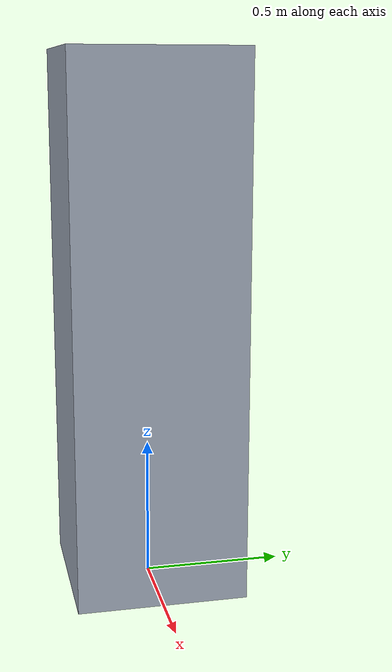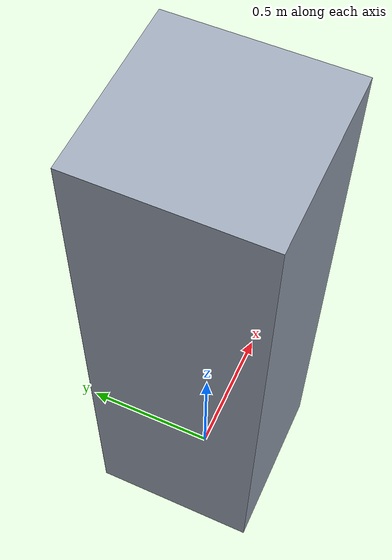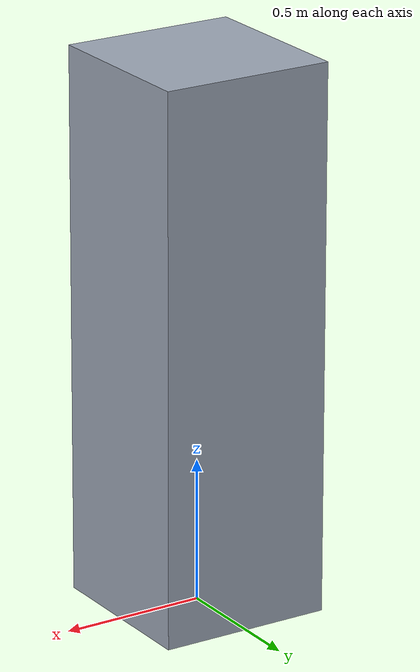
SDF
<?xml version="1.0"?>
<sdf version="1.9">
  <model name="cabinet_tall">
    <static>true</static>
    <link name="link">
      <collision name="collision_0">
        <pose>0 0 0.95 0 0 0</pose>
        <geometry><box><size>0.6 0.6 1.9</size></box></geometry>
      </collision>
      <visual name="visual_0">
        <pose>0 0 0.95 0 0 0</pose>
        <geometry><box><size>0.6 0.6 1.9</size></box></geometry>
        <material>
          <ambient>0.62 0.66 0.72 1</ambient>
          <diffuse>0.62 0.66 0.72 1</diffuse>
        </material>
      </visual>
    </link>
  </model>
</sdf>
